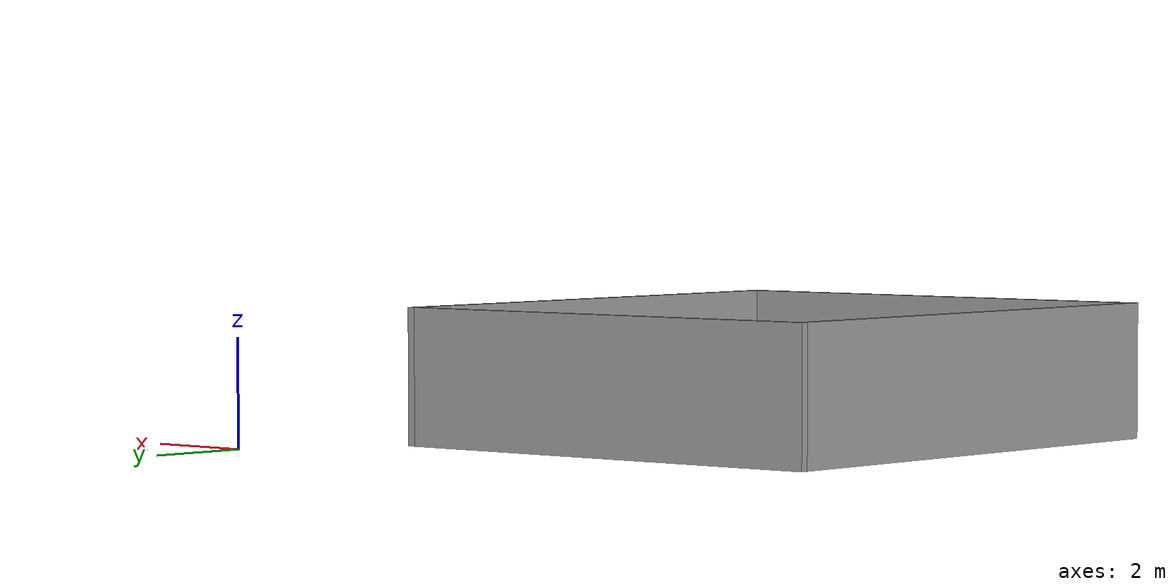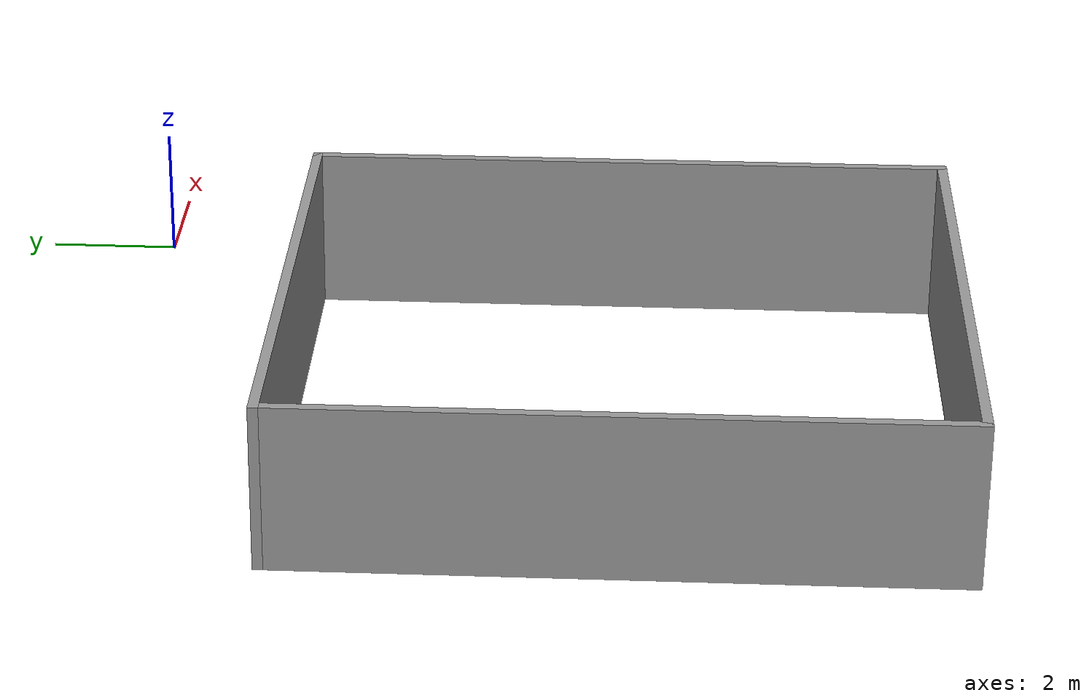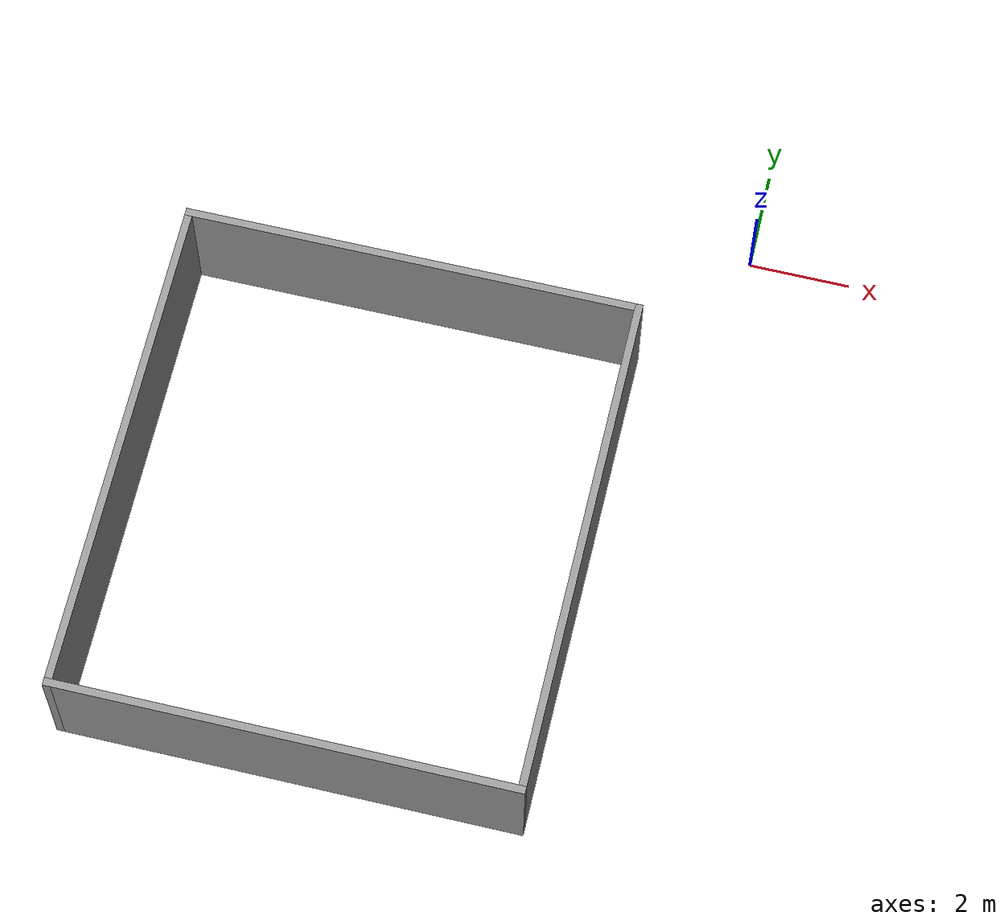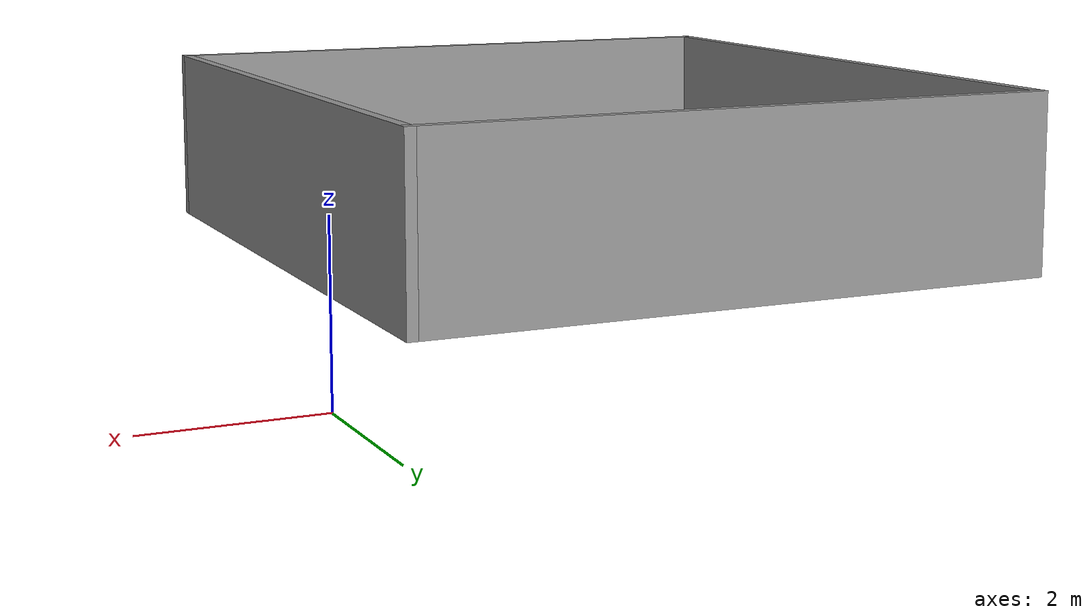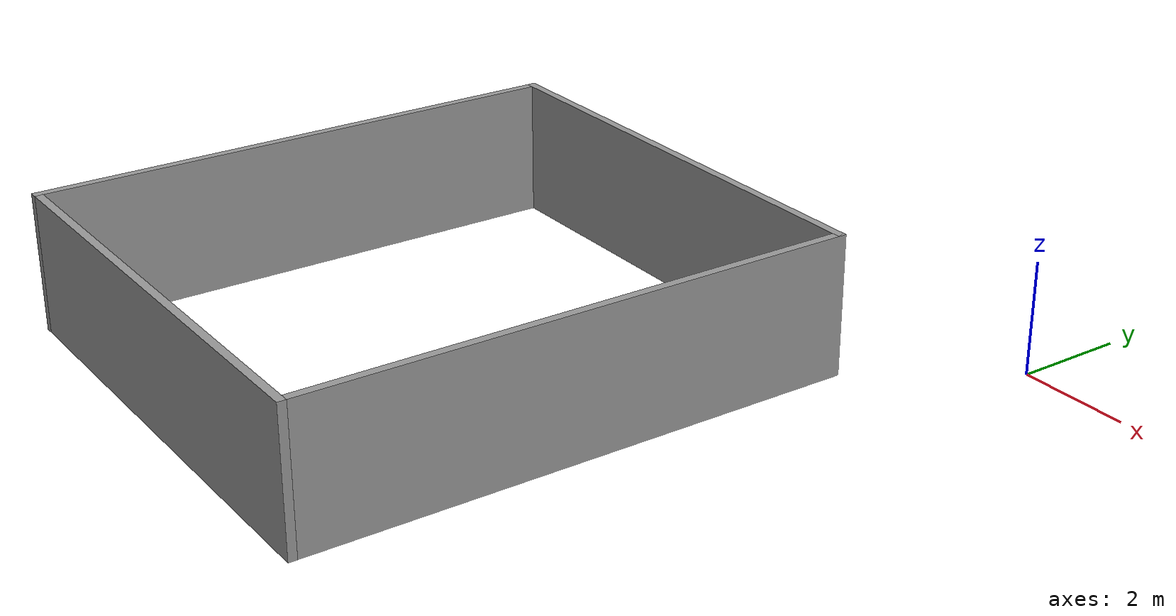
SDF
<?xml version='1.0'?>
<sdf version='1.6'>
  <model name='aula'>
    <pose frame=''>-6.23361 -7.56572 0 0 -0 0</pose>
    <link name='Wall_0'>
      <collision name='Wall_0_Collision'>
        <geometry>
          <box>
            <size>9 0.15 2.5</size>
          </box>
        </geometry>
        <pose frame=''>0 0 1.25 0 -0 0</pose>
      </collision>
      <visual name='Wall_0_Visual'>
        <pose frame=''>0 0 1.25 0 -0 0</pose>
        <geometry>
          <box>
            <size>9 0.15 2.5</size>
          </box>
        </geometry>
        <material>
          <script>
            <uri>file://media/materials/scripts/gazebo.material</uri>
            <name>Gazebo/Grey</name>
          </script>
          <ambient>1 1 1 1</ambient>
        </material>
      </visual>
      <pose frame=''>0 4.925 0 0 -0 3.14159</pose>
    </link>
    <link name='Wall_13'>
      <collision name='Wall_13_Collision'>
        <geometry>
          <box>
            <size>9 0.15 2.5</size>
          </box>
        </geometry>
        <pose frame=''>0 0 1.25 0 -0 0</pose>
      </collision>
      <visual name='Wall_13_Visual'>
        <pose frame=''>0 0 1.25 0 -0 0</pose>
        <geometry>
          <box>
            <size>9 0.15 2.5</size>
          </box>
        </geometry>
        <material>
          <script>
            <uri>file://media/materials/scripts/gazebo.material</uri>
            <name>Gazebo/Grey</name>
          </script>
          <ambient>1 1 1 1</ambient>
        </material>
      </visual>
      <pose frame=''>0 -4.925 0 0 -0 3.14159</pose>
    </link>
    <link name='Wall_2'>
      <collision name='Wall_2_Collision'>
        <geometry>
          <box>
            <size>10 0.15 2.5</size>
          </box>
        </geometry>
        <pose frame=''>0 0 1.25 0 -0 0</pose>
      </collision>
      <visual name='Wall_2_Visual'>
        <pose frame=''>0 0 1.25 0 -0 0</pose>
        <geometry>
          <box>
            <size>10 0.15 2.5</size>
          </box>
        </geometry>
        <material>
          <script>
            <uri>file://media/materials/scripts/gazebo.material</uri>
            <name>Gazebo/Grey</name>
          </script>
          <ambient>1 1 1 1</ambient>
        </material>
      </visual>
      <pose frame=''>-4.425 0 0 0 0 -1.5708</pose>
    </link>
    <link name='Wall_7'>
      <collision name='Wall_7_Collision'>
        <geometry>
          <box>
            <size>10 0.15 2.5</size>
          </box>
        </geometry>
        <pose frame=''>0 0 1.25 0 -0 0</pose>
      </collision>
      <visual name='Wall_7_Visual'>
        <pose frame=''>0 0 1.25 0 -0 0</pose>
        <geometry>
          <box>
            <size>10 0.15 2.5</size>
          </box>
        </geometry>
        <material>
          <script>
            <uri>file://media/materials/scripts/gazebo.material</uri>
            <name>Gazebo/Grey</name>
          </script>
          <ambient>1 1 1 1</ambient>
        </material>
      </visual>
      <pose frame=''>4.425 0 0 0 0 -1.5708</pose>
    </link>
    <static>1</static>
  </model>
</sdf>
